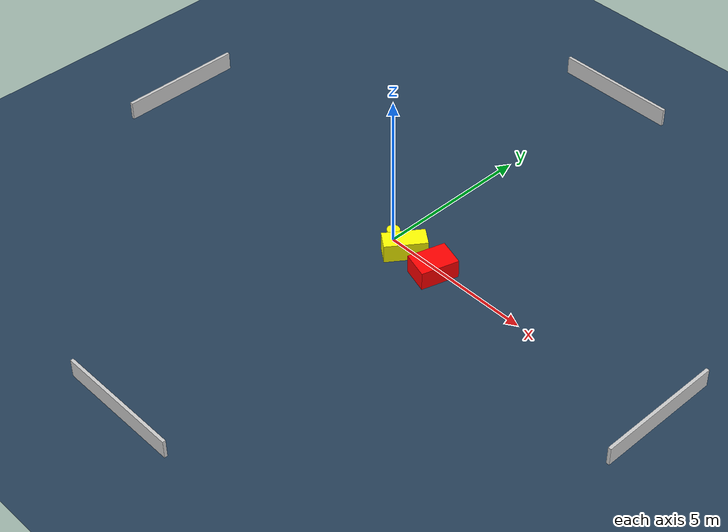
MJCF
<?xml version="1.0" ?>
<mujoco model="generated_environment">
  <option timestep="0.01" integrator="RK4" cone="elliptic"/>
  <default>
    <geom density="1"/>
  </default>
  <asset>
    <texture builtin="gradient" height="3072" name="skybox" rgb1="0.3 0.5 0.7" rgb2="0 0 0" type="skybox" width="512"/>
    <texture builtin="checker" height="300" name="groundplane" rgb1="0.2 0.3 0.4" rgb2="0.1 0.2 0.3" type="2d" width="300"/>
    <material name="groundplane" reflectance="0.2" texrepeat="5 5" texture="groundplane"/>
  </asset>
  <worldbody>
    <light dir="0 0 -1" directional="true" pos="0 0 1.5"/>
    <geom condim="3" friction="0.5 0.005 0.001" material="groundplane" name="floor" pos="0 0 0" size="0 0 0.05" type="plane"/>
    <body name="walls">
      <geom name="wall_1" condim="4" pos="-10.0 0.0 0.3" rgba="0.800000011920929 0.800000011920929 0.800000011920929 1.0" size="0.05 2.0 0.3" type="box"/>
      <geom name="wall_2" condim="4" pos="10.0 0.0 0.3" rgba="0.800000011920929 0.800000011920929 0.800000011920929 1.0" size="0.05 2.0 0.3" type="box"/>
      <geom name="wall_3" condim="4" pos="0.0 -10.0 0.3" rgba="0.800000011920929 0.800000011920929 0.800000011920929 1.0" size="2.0 0.05 0.3" type="box"/>
      <geom name="wall_4" condim="4" pos="0.0 10.0 0.3" rgba="0.800000011920929 0.800000011920929 0.800000011920929 1.0" size="2.0 0.05 0.3" type="box"/>
    </body>
    <body name="robot">
      <joint name="joint_x" type="slide" pos="0 0 0" axis="1 0 0"/>
      <joint name="joint_y" type="slide" pos="0 0 0" axis="0 1 0"/>
      <geom name="robot" type="cylinder" pos="0.0 0.0 0.2" size="0.2 0.2 0.0" mass="5.0" friction="1.0 0.005 0.0001" condim="4" rgba="1.0 1.0 0.0 1.0"/>
    </body>
    <body name="obstacle_1_movable">
      <geom name="obstacle_1_movable" condim="4" pos="0.6650791488428189 -0.18221199985089814 0.3" euler="0 0 323.9563307176959" friction="0.0 0.005 0.001" rgba="1.0 1.0 0.0 1.0" size="0.30949218919817184 0.6564259292893637 0.3" type="box" mass="0.1"/>
      <joint type="free"/>
    </body>
    <body name="obstacle_2_static">
      <geom name="obstacle_2_static" condim="4" pos="1.8628038551320714 -0.20732822780467955 0.3" euler="0 0 73.50640295037397" friction="0.0 0.005 0.001" rgba="1.0 0.0 0.0 1.0" size="0.6007846920119322 0.43498441986141595 0.3" type="box"/>
    </body>
  </worldbody>
  <actuator>
    <motor name="actuator_x" joint="joint_x" gear="1" ctrlrange="-1 1"/>
    <motor name="actuator_y" joint="joint_y" gear="1" ctrlrange="-1 1"/>
  </actuator>
</mujoco>
